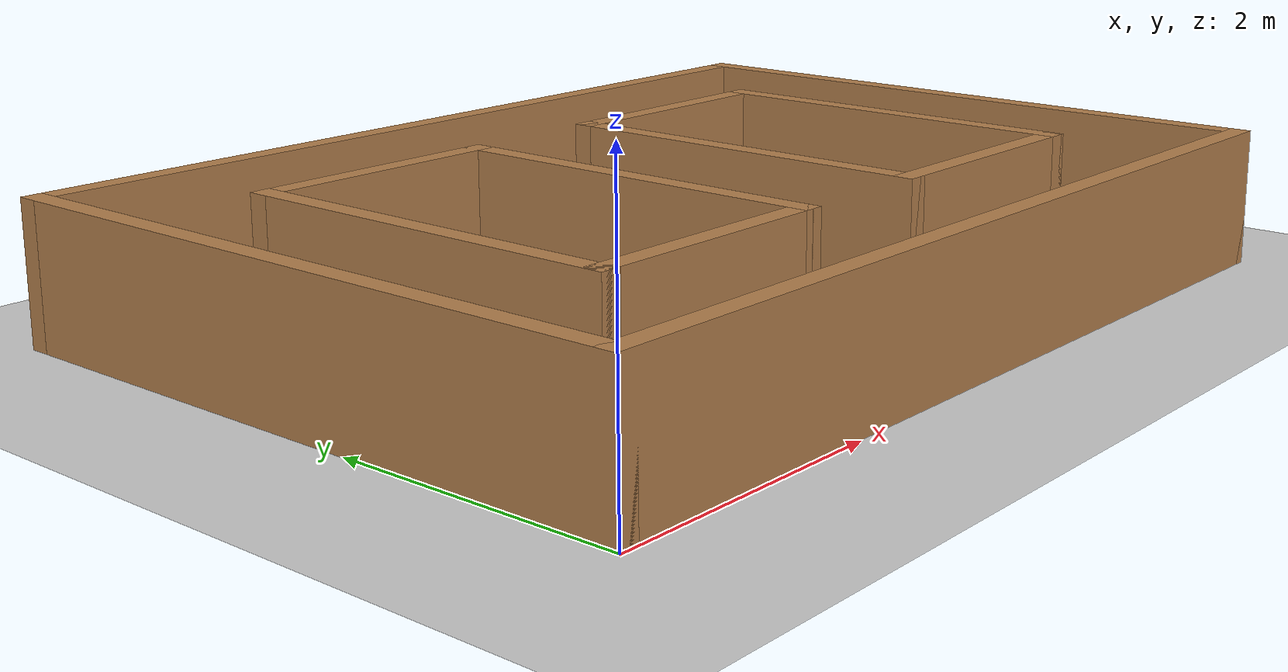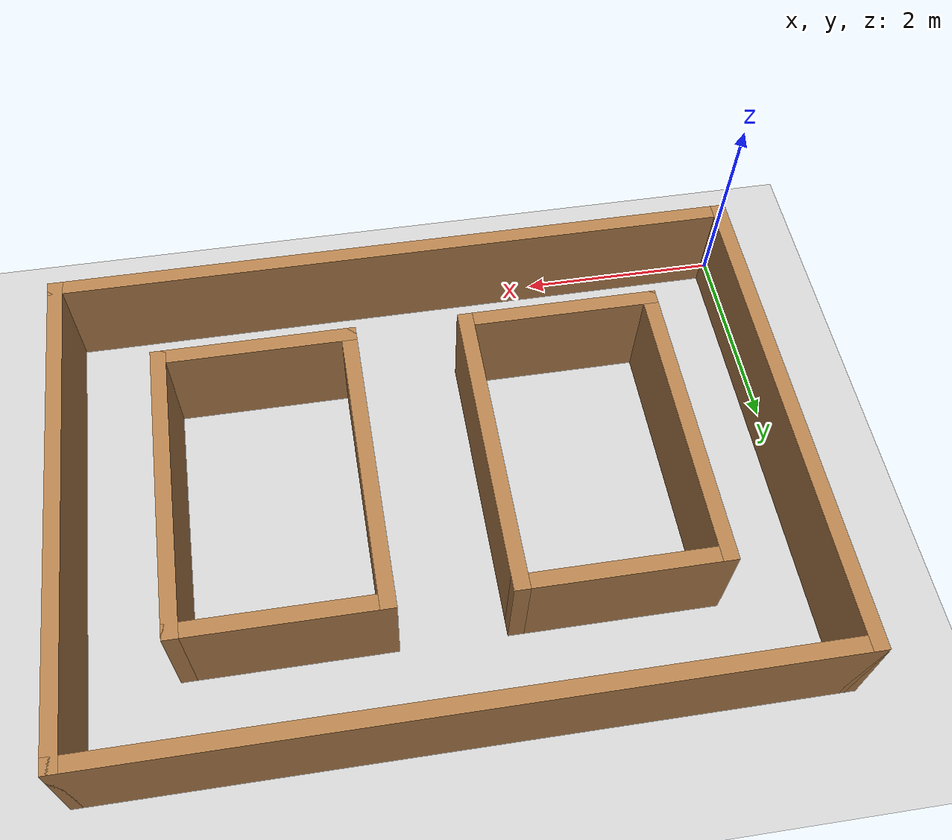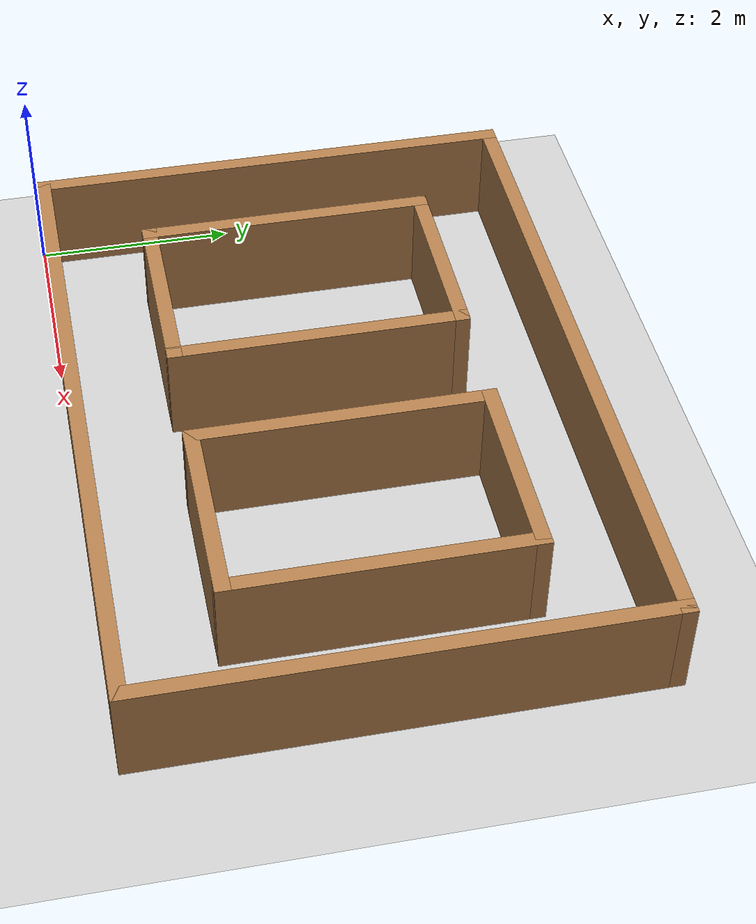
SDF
<sdf version="1.6">
 <world name="default">
  <light name="sun" type="directional">
   <pose>0 0 10 0 -0 0</pose>
   <diffuse>0.8 0.8 0.8 1</diffuse>
   <specular>0.2 0.2 0.2 1</specular>
   <attenuation>
    <range>1000</range>
    <constant>0.9</constant>
    <linear>0.01</linear>
    <quadratic>0.001</quadratic>
   </attenuation>
   <direction>-0.5 0.1 -0.9</direction>
  </light>
  <model name="ground_plane">
   <static>1</static>
   <link name="link">
    <collision name="collision">
     <geometry><plane><normal>0 0 1</normal><size>100 100</size></plane></geometry>
     <surface>
      <contact><collide_bitmask>65535</collide_bitmask></contact>
      <friction><ode><mu>100</mu><mu2>50</mu2></ode></friction>
     </surface>
    </collision>
    <visual name="visual">
     <cast_shadows>0</cast_shadows>
     <geometry><plane><normal>0 0 1</normal><size>100 100</size></plane></geometry>
     <material>
      <script><uri>file://media/materials/scripts/gazebo.material</uri><name>Gazebo/Grey</name></script>
     </material>
    </visual>
   </link>
  </model>
  <gravity>0 0 -9.8</gravity>
  <magnetic_field>6e-06 2.3e-05 -4.2e-05</magnetic_field>
  <atmosphere type="adiabatic"/>
  <physics name="default_physics" default="0" type="ode">
   <max_step_size>0.002</max_step_size>
   <real_time_factor>1</real_time_factor>
   <real_time_update_rate>2500</real_time_update_rate>
  </physics>
  <scene><ambient>0.4 0.4 0.4 1</ambient><background>0.7 0.7 0.7 1</background><shadows>1</shadows></scene>
  <audio><device>default</device></audio>
  <spherical_coordinates>
   <surface_model>EARTH_WGS84</surface_model>
   <latitude_deg>0</latitude_deg>
   <longitude_deg>0</longitude_deg>
   <elevation>0</elevation>
   <heading_deg>0</heading_deg>
  </spherical_coordinates>
  <model name="house2">
   <pose>3.49368 2.50679 0 0 -0 0</pose>
   <link name="Wall_3">
    <collision name="Wall_3_Collision">
     <geometry><box><size>7 0.15 1</size></box></geometry>
     <pose>0 0 0.5 0 -0 0</pose>
    </collision>
    <visual name="Wall_3_Visual">
     <pose>0 0 0.5 0 -0 0</pose>
     <geometry><box><size>7 0.15 1</size></box></geometry>
     <material>
      <script><uri>file://media/materials/scripts/gazebo.material</uri><name>Gazebo/Wood</name></script>
      <ambient>1 1 1 1</ambient>
     </material>
     <meta><layer>0</layer></meta>
    </visual>
    <pose>0 2.425 0 0 -0 0</pose>
   </link>
   <link name="Wall_7">
    <collision name="Wall_7_Collision">
     <geometry><box><size>5 0.15 1</size></box></geometry>
     <pose>0 0 0.5 0 -0 0</pose>
    </collision>
    <visual name="Wall_7_Visual">
     <pose>0 0 0.5 0 -0 0</pose>
     <geometry><box><size>5 0.15 1</size></box></geometry>
     <material>
      <script><uri>file://media/materials/scripts/gazebo.material</uri><name>Gazebo/Wood</name></script>
      <ambient>1 1 1 1</ambient>
     </material>
     <meta><layer>0</layer></meta>
    </visual>
    <pose>-3.425 -0 0 0 -0 -1.5708</pose>
   </link>
   <link name="Wall_8">
    <collision name="Wall_8_Collision">
     <geometry><box><size>7 0.15 1</size></box></geometry>
     <pose>0 0 0.5 0 -0 0</pose>
    </collision>
    <visual name="Wall_8_Visual">
     <pose>0 0 0.5 0 -0 0</pose>
     <geometry><box><size>7 0.15 1</size></box></geometry>
     <material>
      <script><uri>file://media/materials/scripts/gazebo.material</uri><name>Gazebo/Wood</name></script>
      <ambient>1 1 1 1</ambient>
     </material>
     <meta><layer>0</layer></meta>
    </visual>
    <pose>0 -2.425 0 0 -0 0</pose>
   </link>
   <link name="Wall_9">
    <collision name="Wall_9_Collision">
     <geometry><box><size>5 0.15 1</size></box></geometry>
     <pose>0 0 0.5 0 -0 0</pose>
    </collision>
    <visual name="Wall_9_Visual">
     <pose>0 0 0.5 0 -0 0</pose>
     <geometry><box><size>5 0.15 1</size></box></geometry>
     <material>
      <script><uri>file://media/materials/scripts/gazebo.material</uri><name>Gazebo/Wood</name></script>
      <ambient>1 1 1 1</ambient>
     </material>
     <meta><layer>0</layer></meta>
    </visual>
    <pose>3.425 -0 0 0 -0 1.5708</pose>
   </link>
   <static>1</static>
  </model>
  <model name="house1">
   <pose>1.99775 2.51182 0 0 -0 0</pose>
   <link name="Wall_5">
    <collision name="Wall_5_Collision">
     <geometry><box><size>3 0.15 1</size></box></geometry>
     <pose>0 0 0.5 0 -0 0</pose>
    </collision>
    <visual name="Wall_5_Visual">
     <pose>0 0 0.5 0 -0 0</pose>
     <geometry><box><size>3 0.15 1</size></box></geometry>
     <material>
      <script><uri>file://media/materials/scripts/gazebo.material</uri><name>Gazebo/Wood</name></script>
      <ambient>1 1 1 1</ambient>
     </material>
     <meta><layer>0</layer></meta>
    </visual>
    <pose>-0.925 -0 0 0 -0 -1.5708</pose>
   </link>
   <link name="Wall_6">
    <collision name="Wall_6_Collision">
     <geometry><box><size>2 0.15 1</size></box></geometry>
     <pose>0 0 0.5 0 -0 0</pose>
    </collision>
    <visual name="Wall_6_Visual">
     <pose>0 0 0.5 0 -0 0</pose>
     <geometry><box><size>2 0.15 1</size></box></geometry>
     <material>
      <script><uri>file://media/materials/scripts/gazebo.material</uri><name>Gazebo/Wood</name></script>
      <ambient>1 1 1 1</ambient>
     </material>
     <meta><layer>0</layer></meta>
    </visual>
    <pose>-0 -1.425 0 0 -0 0</pose>
   </link>
   <link name="Wall_7">
    <collision name="Wall_7_Collision">
     <geometry><box><size>3 0.15 1</size></box></geometry>
     <pose>0 0 0.5 0 -0 0</pose>
    </collision>
    <visual name="Wall_7_Visual">
     <pose>0 0 0.5 0 -0 0</pose>
     <geometry><box><size>3 0.15 1</size></box></geometry>
     <material>
      <script><uri>file://media/materials/scripts/gazebo.material</uri><name>Gazebo/Wood</name></script>
      <ambient>1 1 1 1</ambient>
     </material>
     <meta><layer>0</layer></meta>
    </visual>
    <pose>0.925 -0 0 0 -0 1.5708</pose>
   </link>
   <link name="Wall_8">
    <collision name="Wall_8_Collision">
     <geometry><box><size>2 0.15 1</size></box></geometry>
     <pose>0 0 0.5 0 -0 0</pose>
    </collision>
    <visual name="Wall_8_Visual">
     <pose>0 0 0.5 0 -0 0</pose>
     <geometry><box><size>2 0.15 1</size></box></geometry>
     <material>
      <script><uri>file://media/materials/scripts/gazebo.material</uri><name>Gazebo/Wood</name></script>
      <ambient>1 1 1 1</ambient>
     </material>
     <meta><layer>0</layer></meta>
    </visual>
    <pose>-0 1.425 0 0 -0 3.14159</pose>
   </link>
   <static>1</static>
  </model>
  <model name="house1_0">
   <pose>5.00585 2.51115 0 0 -0 0</pose>
   <link name="Wall_5">
    <collision name="Wall_5_Collision">
     <geometry><box><size>3 0.15 1</size></box></geometry>
     <pose>0 0 0.5 0 -0 0</pose>
    </collision>
    <visual name="Wall_5_Visual">
     <pose>0 0 0.5 0 -0 0</pose>
     <geometry><box><size>3 0.15 1</size></box></geometry>
     <material>
      <script><uri>file://media/materials/scripts/gazebo.material</uri><name>Gazebo/Wood</name></script>
      <ambient>1 1 1 1</ambient>
     </material>
     <meta><layer>0</layer></meta>
    </visual>
    <pose>-0.925 -0 0 0 -0 -1.5708</pose>
   </link>
   <link name="Wall_6">
    <collision name="Wall_6_Collision">
     <geometry><box><size>2 0.15 1</size></box></geometry>
     <pose>0 0 0.5 0 -0 0</pose>
    </collision>
    <visual name="Wall_6_Visual">
     <pose>0 0 0.5 0 -0 0</pose>
     <geometry><box><size>2 0.15 1</size></box></geometry>
     <material>
      <script><uri>file://media/materials/scripts/gazebo.material</uri><name>Gazebo/Wood</name></script>
      <ambient>1 1 1 1</ambient>
     </material>
     <meta><layer>0</layer></meta>
    </visual>
    <pose>-0 -1.425 0 0 -0 0</pose>
   </link>
   <link name="Wall_7">
    <collision name="Wall_7_Collision">
     <geometry><box><size>3 0.15 1</size></box></geometry>
     <pose>0 0 0.5 0 -0 0</pose>
    </collision>
    <visual name="Wall_7_Visual">
     <pose>0 0 0.5 0 -0 0</pose>
     <geometry><box><size>3 0.15 1</size></box></geometry>
     <material>
      <script><uri>file://media/materials/scripts/gazebo.material</uri><name>Gazebo/Wood</name></script>
      <ambient>1 1 1 1</ambient>
     </material>
     <meta><layer>0</layer></meta>
    </visual>
    <pose>0.925 -0 0 0 -0 1.5708</pose>
   </link>
   <link name="Wall_8">
    <collision name="Wall_8_Collision">
     <geometry><box><size>2 0.15 1</size></box></geometry>
     <pose>0 0 0.5 0 -0 0</pose>
    </collision>
    <visual name="Wall_8_Visual">
     <pose>0 0 0.5 0 -0 0</pose>
     <geometry><box><size>2 0.15 1</size></box></geometry>
     <material>
      <script><uri>file://media/materials/scripts/gazebo.material</uri><name>Gazebo/Wood</name></script>
      <ambient>1 1 1 1</ambient>
     </material>
     <meta><layer>0</layer></meta>
    </visual>
    <pose>-0 1.425 0 0 -0 3.14159</pose>
   </link>
   <static>1</static>
  </model>
 </world>
</sdf>
